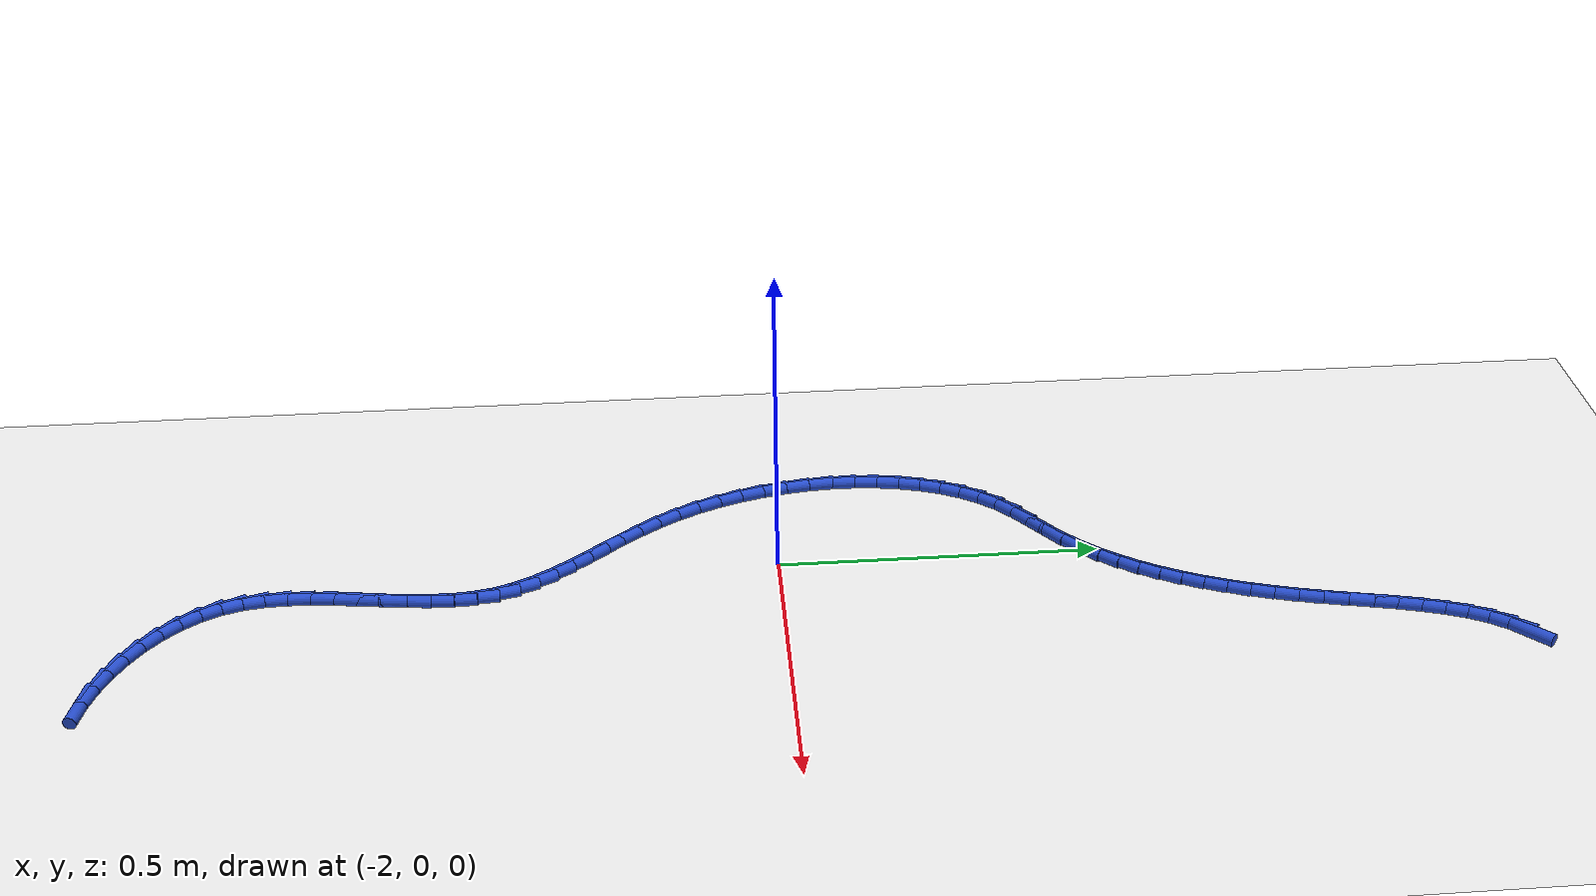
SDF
<sdf version="1.6">
 <world name="default">
  <model name="ground_plane">
   <static>1</static>
   <link name="link">
    <collision name="collision">
     <geometry><plane><normal>0 0 1</normal><size>100 100</size></plane></geometry>
     <surface><friction><ode><mu>100</mu><mu2>50</mu2></ode></friction></surface>
    </collision>
    <visual name="visual">
     <cast_shadows>0</cast_shadows>
     <geometry><plane><normal>0 0 1</normal><size>100 100</size></plane></geometry>
     <material>
      <script><uri>file://media/materials/scripts/gazebo.material</uri><name>Gazebo/WhiteGlow</name></script>
     </material>
    </visual>
   </link>
  </model>
  <model name="line">
   <link name="link_71">
    <pose>-1.721616992070894 1.0969498196716259 0.01 0 1.57 0.7850406480658003</pose>
    <collision name="collision">
     <geometry><cylinder><radius>0.01</radius><length>0.08</length></cylinder></geometry>
    </collision>
    <visual name="visual">
     <material>
      <script><name>Gazebo/Blue</name><uri>file://media/materials/scripts/gazebo.material</uri></script>
     </material>
     <geometry><cylinder><radius>0.01</radius><length>0.08</length></cylinder></geometry>
    </visual>
   </link>
   <link name="link_72">
    <pose>-1.7428768564190924 1.0757051513461702 0.01 0 1.57 0.9536490892849643</pose>
    <collision name="collision">
     <geometry><cylinder><radius>0.01</radius><length>0.08</length></cylinder></geometry>
    </collision>
    <visual name="visual">
     <material>
      <script><name>Gazebo/Blue</name><uri>file://media/materials/scripts/gazebo.material</uri></script>
     </material>
     <geometry><cylinder><radius>0.01</radius><length>0.08</length></cylinder></geometry>
    </visual>
   </link>
   <link name="link_73">
    <pose>-1.7606651377071614 1.0506375008353988 0.01 0 1.57 1.0885914494220699</pose>
    <collision name="collision">
     <geometry><cylinder><radius>0.01</radius><length>0.08</length></cylinder></geometry>
    </collision>
    <visual name="visual">
     <material>
      <script><name>Gazebo/Blue</name><uri>file://media/materials/scripts/gazebo.material</uri></script>
     </material>
     <geometry><cylinder><radius>0.01</radius><length>0.08</length></cylinder></geometry>
    </visual>
   </link>
   <link name="link_74">
    <pose>-1.7755036927709775 1.0222880817237585 0.01 0 1.57 1.1909164609186258</pose>
    <collision name="collision">
     <geometry><cylinder><radius>0.01</radius><length>0.08</length></cylinder></geometry>
    </collision>
    <visual name="visual">
     <material>
      <script><name>Gazebo/Blue</name><uri>file://media/materials/scripts/gazebo.material</uri></script>
     </material>
     <geometry><cylinder><radius>0.01</radius><length>0.08</length></cylinder></geometry>
    </visual>
   </link>
   <link name="link_75">
    <pose>-1.7879164550227946 0.9911997063105349 0.01 0 1.57 1.2649174011875994</pose>
    <collision name="collision">
     <geometry><cylinder><radius>0.01</radius><length>0.08</length></cylinder></geometry>
    </collision>
    <visual name="visual">
     <material>
      <script><name>Gazebo/Blue</name><uri>file://media/materials/scripts/gazebo.material</uri></script>
     </material>
     <geometry><cylinder><radius>0.01</radius><length>0.08</length></cylinder></geometry>
    </visual>
   </link>
   <link name="link_76">
    <pose>-1.7984273578748673 0.9579151868950121 0.01 0 1.57 1.315111400061034</pose>
    <collision name="collision">
     <geometry><cylinder><radius>0.01</radius><length>0.08</length></cylinder></geometry>
    </collision>
    <visual name="visual">
     <material>
      <script><name>Gazebo/Blue</name><uri>file://media/materials/scripts/gazebo.material</uri></script>
     </material>
     <geometry><cylinder><radius>0.01</radius><length>0.08</length></cylinder></geometry>
    </visual>
   </link>
   <link name="link_77">
    <pose>-1.8075603347394487 0.9229773357764767 0.01 0 1.57 1.3450478365298546</pose>
    <collision name="collision">
     <geometry><cylinder><radius>0.01</radius><length>0.08</length></cylinder></geometry>
    </collision>
    <visual name="visual">
     <material>
      <script><name>Gazebo/Blue</name><uri>file://media/materials/scripts/gazebo.material</uri></script>
     </material>
     <geometry><cylinder><radius>0.01</radius><length>0.08</length></cylinder></geometry>
    </visual>
   </link>
   <link name="link_78">
    <pose>-1.8158393190287943 0.8869289652542129 0.01 0 1.57 1.3570249119139484</pose>
    <collision name="collision">
     <geometry><cylinder><radius>0.01</radius><length>0.08</length></cylinder></geometry>
    </collision>
    <visual name="visual">
     <material>
      <script><name>Gazebo/Blue</name><uri>file://media/materials/scripts/gazebo.material</uri></script>
     </material>
     <geometry><cylinder><radius>0.01</radius><length>0.08</length></cylinder></geometry>
    </visual>
   </link>
   <link name="link_79">
    <pose>-1.8237882441551565 0.8503128876275055 0.01 0 1.57 1.3521179907283998</pose>
    <collision name="collision">
     <geometry><cylinder><radius>0.01</radius><length>0.08</length></cylinder></geometry>
    </collision>
    <visual name="visual">
     <material>
      <script><name>Gazebo/Blue</name><uri>file://media/materials/scripts/gazebo.material</uri></script>
     </material>
     <geometry><cylinder><radius>0.01</radius><length>0.08</length></cylinder></geometry>
    </visual>
   </link>
   <link name="link_80">
    <pose>-1.8319310435307916 0.813671915195641 0.01 0 1.57 1.3308188101149714</pose>
    <collision name="collision">
     <geometry><cylinder><radius>0.01</radius><length>0.08</length></cylinder></geometry>
    </collision>
    <visual name="visual">
     <material>
      <script><name>Gazebo/Blue</name><uri>file://media/materials/scripts/gazebo.material</uri></script>
     </material>
     <geometry><cylinder><radius>0.01</radius><length>0.08</length></cylinder></geometry>
    </visual>
   </link>
   <link name="link_81">
    <pose>-1.8407745361681223 0.7775307210288828 0.01 0 1.57 1.3002278407176653</pose>
    <collision name="collision">
     <geometry><cylinder><radius>0.01</radius><length>0.08</length></cylinder></geometry>
    </collision>
    <visual name="visual">
     <material>
      <script><name>Gazebo/Blue</name><uri>file://media/materials/scripts/gazebo.material</uri></script>
     </material>
     <geometry><cylinder><radius>0.01</radius><length>0.08</length></cylinder></geometry>
    </visual>
   </link>
   <link name="link_82">
    <pose>-1.850585456312026 0.7421595168885219 0.01 0 1.57 1.2657732977569667</pose>
    <collision name="collision">
     <geometry><cylinder><radius>0.01</radius><length>0.08</length></cylinder></geometry>
    </collision>
    <visual name="visual">
     <material>
      <script><name>Gazebo/Blue</name><uri>file://media/materials/scripts/gazebo.material</uri></script>
     </material>
     <geometry><cylinder><radius>0.01</radius><length>0.08</length></cylinder></geometry>
    </visual>
   </link>
   <link name="link_83">
    <pose>-1.8614535751484085 0.7076409547331804 0.01 0 1.57 1.2273662343875011</pose>
    <collision name="collision">
     <geometry><cylinder><radius>0.01</radius><length>0.08</length></cylinder></geometry>
    </collision>
    <visual name="visual">
     <material>
      <script><name>Gazebo/Blue</name><uri>file://media/materials/scripts/gazebo.material</uri></script>
     </material>
     <geometry><cylinder><radius>0.01</radius><length>0.08</length></cylinder></geometry>
    </visual>
   </link>
   <link name="link_84">
    <pose>-1.8734645432204677 0.6740533191301273 0.01 0 1.57 1.1847955524513125</pose>
    <collision name="collision">
     <geometry><cylinder><radius>0.01</radius><length>0.08</length></cylinder></geometry>
    </collision>
    <visual name="visual">
     <material>
      <script><name>Gazebo/Blue</name><uri>file://media/materials/scripts/gazebo.material</uri></script>
     </material>
     <geometry><cylinder><radius>0.01</radius><length>0.08</length></cylinder></geometry>
    </visual>
   </link>
   <link name="link_85">
    <pose>-1.8867040110714004 0.6414748946466312 0.01 0 1.57 1.1378822868149392</pose>
    <collision name="collision">
     <geometry><cylinder><radius>0.01</radius><length>0.08</length></cylinder></geometry>
    </collision>
    <visual name="visual">
     <material>
      <script><name>Gazebo/Blue</name><uri>file://media/materials/scripts/gazebo.material</uri></script>
     </material>
     <geometry><cylinder><radius>0.01</radius><length>0.08</length></cylinder></geometry>
    </visual>
   </link>
   <link name="link_86">
    <pose>-1.9012576292444046 0.6099839658499623 0.01 0 1.57 1.0865039645212868</pose>
    <collision name="collision">
     <geometry><cylinder><radius>0.01</radius><length>0.08</length></cylinder></geometry>
    </collision>
    <visual name="visual">
     <material>
      <script><name>Gazebo/Blue</name><uri>file://media/materials/scripts/gazebo.material</uri></script>
     </material>
     <geometry><cylinder><radius>0.01</radius><length>0.08</length></cylinder></geometry>
    </visual>
   </link>
   <link name="link_87">
    <pose>-1.9172110482826765 0.5796588173073889 0.01 0 1.57 1.0306241380098038</pose>
    <collision name="collision">
     <geometry><cylinder><radius>0.01</radius><length>0.08</length></cylinder></geometry>
    </collision>
    <visual name="visual">
     <material>
      <script><name>Gazebo/Blue</name><uri>file://media/materials/scripts/gazebo.material</uri></script>
     </material>
     <geometry><cylinder><radius>0.01</radius><length>0.08</length></cylinder></geometry>
    </visual>
   </link>
   <link name="link_88">
    <pose>-1.9346499187294144 0.55057773358618 0.01 0 1.57 0.9703253128235724</pose>
    <collision name="collision">
     <geometry><cylinder><radius>0.01</radius><length>0.08</length></cylinder></geometry>
    </collision>
    <visual name="visual">
     <material>
      <script><name>Gazebo/Blue</name><uri>file://media/materials/scripts/gazebo.material</uri></script>
     </material>
     <geometry><cylinder><radius>0.01</radius><length>0.08</length></cylinder></geometry>
    </visual>
   </link>
   <link name="link_89">
    <pose>-1.953659891127815 0.5228189992536054 0.01 0 1.57 0.9058415240413282</pose>
    <collision name="collision">
     <geometry><cylinder><radius>0.01</radius><length>0.08</length></cylinder></geometry>
    </collision>
    <visual name="visual">
     <material>
      <script><name>Gazebo/Blue</name><uri>file://media/materials/scripts/gazebo.material</uri></script>
     </material>
     <geometry><cylinder><radius>0.01</radius><length>0.08</length></cylinder></geometry>
    </visual>
   </link>
   <link name="link_90">
    <pose>-1.9743266160210764 0.496460898876934 0.01 0 1.57 0.8375846590928235</pose>
    <collision name="collision">
     <geometry><cylinder><radius>0.01</radius><length>0.08</length></cylinder></geometry>
    </collision>
    <visual name="visual">
     <material>
      <script><name>Gazebo/Blue</name><uri>file://media/materials/scripts/gazebo.material</uri></script>
     </material>
     <geometry><cylinder><radius>0.01</radius><length>0.08</length></cylinder></geometry>
    </visual>
   </link>
   <link name="link_91">
    <pose>-1.9967357439523943 0.47158171702343454 0.01 0 1.57 0.7661570792506457</pose>
    <collision name="collision">
     <geometry><cylinder><radius>0.01</radius><length>0.08</length></cylinder></geometry>
    </collision>
    <visual name="visual">
     <material>
      <script><name>Gazebo/Blue</name><uri>file://media/materials/scripts/gazebo.material</uri></script>
     </material>
     <geometry><cylinder><radius>0.01</radius><length>0.08</length></cylinder></geometry>
    </visual>
   </link>
   <link name="link_92">
    <pose>-2.0209729254649678 0.44825973826037635 0.01 0 1.57 0.6932432770063294</pose>
    <collision name="collision">
     <geometry><cylinder><radius>0.01</radius><length>0.08</length></cylinder></geometry>
    </collision>
    <visual name="visual">
     <material>
      <script><name>Gazebo/Blue</name><uri>file://media/materials/scripts/gazebo.material</uri></script>
     </material>
     <geometry><cylinder><radius>0.01</radius><length>0.08</length></cylinder></geometry>
    </visual>
   </link>
   <link name="link_93">
    <pose>-2.0471004897396075 0.42655287189123436 0.01 0 1.57 0.6484501410979092</pose>
    <collision name="collision">
     <geometry><cylinder><radius>0.01</radius><length>0.08</length></cylinder></geometry>
    </collision>
    <visual name="visual">
     <material>
      <script><name>Gazebo/Blue</name><uri>file://media/materials/scripts/gazebo.material</uri></script>
     </material>
     <geometry><cylinder><radius>0.01</radius><length>0.08</length></cylinder></geometry>
    </visual>
   </link>
   <link name="link_94">
    <pose>-2.074418054748034 0.40585266640285317 0.01 0 1.57 0.6653118434139</pose>
    <collision name="collision">
     <geometry><cylinder><radius>0.01</radius><length>0.08</length></cylinder></geometry>
    </collision>
    <visual name="visual">
     <material>
      <script><name>Gazebo/Blue</name><uri>file://media/materials/scripts/gazebo.material</uri></script>
     </material>
     <geometry><cylinder><radius>0.01</radius><length>0.08</length></cylinder></geometry>
    </visual>
   </link>
   <link name="link_95">
    <pose>-2.101310487315033 0.3847514761519522 0.01 0 1.57 0.7467131024786564</pose>
    <collision name="collision">
     <geometry><cylinder><radius>0.01</radius><length>0.08</length></cylinder></geometry>
    </collision>
    <visual name="visual">
     <material>
      <script><name>Gazebo/Blue</name><uri>file://media/materials/scripts/gazebo.material</uri></script>
     </material>
     <geometry><cylinder><radius>0.01</radius><length>0.08</length></cylinder></geometry>
    </visual>
   </link>
   <link name="link_96">
    <pose>-2.1261122077774526 0.3617980871313153 0.01 0 1.57 0.8728553051758108</pose>
    <collision name="collision">
     <geometry><cylinder><radius>0.01</radius><length>0.08</length></cylinder></geometry>
    </collision>
    <visual name="visual">
     <material>
      <script><name>Gazebo/Blue</name><uri>file://media/materials/scripts/gazebo.material</uri></script>
     </material>
     <geometry><cylinder><radius>0.01</radius><length>0.08</length></cylinder></geometry>
    </visual>
   </link>
   <link name="link_97">
    <pose>-2.1476861657017676 0.33607728670237325 0.01 0 1.57 0.9971516784816523</pose>
    <collision name="collision">
     <geometry><cylinder><radius>0.01</radius><length>0.08</length></cylinder></geometry>
    </collision>
    <visual name="visual">
     <material>
      <script><name>Gazebo/Blue</name><uri>file://media/materials/scripts/gazebo.material</uri></script>
     </material>
     <geometry><cylinder><radius>0.01</radius><length>0.08</length></cylinder></geometry>
    </visual>
   </link>
   <link name="link_98">
    <pose>-2.1659761535748423 0.307769985680378 0.01 0 1.57 1.1125925406871937</pose>
    <collision name="collision">
     <geometry><cylinder><radius>0.01</radius><length>0.08</length></cylinder></geometry>
    </collision>
    <visual name="visual">
     <material>
      <script><name>Gazebo/Blue</name><uri>file://media/materials/scripts/gazebo.material</uri></script>
     </material>
     <geometry><cylinder><radius>0.01</radius><length>0.08</length></cylinder></geometry>
    </visual>
   </link>
   <link name="link_99">
    <pose>-2.1810580847479084 0.2771910836179291 0.01 0 1.57 1.2188079778994143</pose>
    <collision name="collision">
     <geometry><cylinder><radius>0.01</radius><length>0.08</length></cylinder></geometry>
    </collision>
    <visual name="visual">
     <material>
      <script><name>Gazebo/Blue</name><uri>file://media/materials/scripts/gazebo.material</uri></script>
     </material>
     <geometry><cylinder><radius>0.01</radius><length>0.08</length></cylinder></geometry>
    </visual>
   </link>
   <link name="link_100">
    <pose>-2.1930078725721986 0.24465548006762491 0.01 0 1.57 1.3162245835256292</pose>
    <collision name="collision">
     <geometry><cylinder><radius>0.01</radius><length>0.08</length></cylinder></geometry>
    </collision>
    <visual name="visual">
     <material>
      <script><name>Gazebo/Blue</name><uri>file://media/materials/scripts/gazebo.material</uri></script>
     </material>
     <geometry><cylinder><radius>0.01</radius><length>0.08</length></cylinder></geometry>
    </visual>
   </link>
   <link name="link_101">
    <pose>-2.2019014303989453 0.2104780745820642 0.01 0 1.57 1.405761200531321</pose>
    <collision name="collision">
     <geometry><cylinder><radius>0.01</radius><length>0.08</length></cylinder></geometry>
    </collision>
    <visual name="visual">
     <material>
      <script><name>Gazebo/Blue</name><uri>file://media/materials/scripts/gazebo.material</uri></script>
     </material>
     <geometry><cylinder><radius>0.01</radius><length>0.08</length></cylinder></geometry>
    </visual>
   </link>
   <link name="link_102">
    <pose>-2.207814671579381 0.1749737667138465 0.01 0 1.57 1.488584949189791</pose>
    <collision name="collision">
     <geometry><cylinder><radius>0.01</radius><length>0.08</length></cylinder></geometry>
    </collision>
    <visual name="visual">
     <material>
      <script><name>Gazebo/Blue</name><uri>file://media/materials/scripts/gazebo.material</uri></script>
     </material>
     <geometry><cylinder><radius>0.01</radius><length>0.08</length></cylinder></geometry>
    </visual>
   </link>
   <link name="link_103">
    <pose>-2.2108235094647366 0.13845745601557036 0.01 0 1.57 1.5659500493285001</pose>
    <collision name="collision">
     <geometry><cylinder><radius>0.01</radius><length>0.08</length></cylinder></geometry>
    </collision>
    <visual name="visual">
     <material>
      <script><name>Gazebo/Blue</name><uri>file://media/materials/scripts/gazebo.material</uri></script>
     </material>
     <geometry><cylinder><radius>0.01</radius><length>0.08</length></cylinder></geometry>
    </visual>
   </link>
   <link name="link_104">
    <pose>-2.2110038574062454 0.10124404203983471 0.01 0 1.57 -1.5024844741557861</pose>
    <collision name="collision">
     <geometry><cylinder><radius>0.01</radius><length>0.08</length></cylinder></geometry>
    </collision>
    <visual name="visual">
     <material>
      <script><name>Gazebo/Blue</name><uri>file://media/materials/scripts/gazebo.material</uri></script>
     </material>
     <geometry><cylinder><radius>0.01</radius><length>0.08</length></cylinder></geometry>
    </visual>
   </link>
   <link name="link_105">
    <pose>-2.2084316287551404 0.06364842433923841 0.01 0 1.57 -1.432323264418848</pose>
    <collision name="collision">
     <geometry><cylinder><radius>0.01</radius><length>0.08</length></cylinder></geometry>
    </collision>
    <visual name="visual">
     <material>
      <script><name>Gazebo/Blue</name><uri>file://media/materials/scripts/gazebo.material</uri></script>
     </material>
     <geometry><cylinder><radius>0.01</radius><length>0.08</length></cylinder></geometry>
    </visual>
   </link>
   <link name="link_106">
    <pose>-2.203182736862652 0.025985502466379436 0.01 0 1.57 -1.3639980919479031</pose>
    <collision name="collision">
     <geometry><cylinder><radius>0.01</radius><length>0.08</length></cylinder></geometry>
    </collision>
    <visual name="visual">
     <material>
      <script><name>Gazebo/Blue</name><uri>file://media/materials/scripts/gazebo.material</uri></script>
     </material>
     <geometry><cylinder><radius>0.01</radius><length>0.08</length></cylinder></geometry>
    </visual>
   </link>
   <link name="link_107">
    <pose>-2.195333095080014 -0.011429824026141476 0.01 0 1.57 -1.2963870027270286</pose>
    <collision name="collision">
     <geometry><cylinder><radius>0.01</radius><length>0.08</length></cylinder></geometry>
    </collision>
    <visual name="visual">
     <material>
      <script><name>Gazebo/Blue</name><uri>file://media/materials/scripts/gazebo.material</uri></script>
     </material>
     <geometry><cylinder><radius>0.01</radius><length>0.08</length></cylinder></geometry>
    </visual>
   </link>
   <link name="link_108">
    <pose>-2.1849586167584576 -0.04828265558572631 0.01 0 1.57 -1.2283880622143148</pose>
    <collision name="collision">
     <geometry><cylinder><radius>0.01</radius><length>0.08</length></cylinder></geometry>
    </collision>
    <visual name="visual">
     <material>
      <script><name>Gazebo/Blue</name><uri>file://media/materials/scripts/gazebo.material</uri></script>
     </material>
     <geometry><cylinder><radius>0.01</radius><length>0.08</length></cylinder></geometry>
    </visual>
   </link>
   <link name="link_109">
    <pose>-2.1721352152492166 -0.08425809265977621 0.01 0 1.57 -1.1588979036686702</pose>
    <collision name="collision">
     <geometry><cylinder><radius>0.01</radius><length>0.08</length></cylinder></geometry>
    </collision>
    <visual name="visual">
     <material>
      <script><name>Gazebo/Blue</name><uri>file://media/materials/scripts/gazebo.material</uri></script>
     </material>
     <geometry><cylinder><radius>0.01</radius><length>0.08</length></cylinder></geometry>
    </visual>
   </link>
   <link name="link_110">
    <pose>-2.156938803903522 -0.11904123569569228 0.01 0 1.57 -1.0867926990642423</pose>
    <collision name="collision">
     <geometry><cylinder><radius>0.01</radius><length>0.08</length></cylinder></geometry>
    </collision>
    <visual name="visual">
     <material>
      <script><name>Gazebo/Blue</name><uri>file://media/materials/scripts/gazebo.material</uri></script>
     </material>
     <geometry><cylinder><radius>0.01</radius><length>0.08</length></cylinder></geometry>
    </visual>
   </link>
   <link name="link_111">
    <pose>-2.1394452960726067 -0.15231718514087558 0.01 0 1.57 -1.0125864615759976</pose>
    <collision name="collision">
     <geometry><cylinder><radius>0.01</radius><length>0.08</length></cylinder></geometry>
    </collision>
    <visual name="visual">
     <material>
      <script><name>Gazebo/Blue</name><uri>file://media/materials/scripts/gazebo.material</uri></script>
     </material>
     <geometry><cylinder><radius>0.01</radius><length>0.08</length></cylinder></geometry>
    </visual>
   </link>
   <link name="link_112">
    <pose>-2.1197734501352796 -0.1838194295296383 0.01 0 1.57 -0.9499192012515043</pose>
    <collision name="collision">
     <geometry><cylinder><radius>0.01</radius><length>0.08</length></cylinder></geometry>
    </collision>
    <visual name="visual">
     <material>
      <script><name>Gazebo/Blue</name><uri>file://media/materials/scripts/gazebo.material</uri></script>
     </material>
     <geometry><cylinder><radius>0.01</radius><length>0.08</length></cylinder></geometry>
    </visual>
   </link>
   <link name="link_113">
    <pose>-2.098406662987274 -0.2136932708842172 0.01 0 1.57 -0.9064836018066085</pose>
    <collision name="collision">
     <geometry><cylinder><radius>0.01</radius><length>0.08</length></cylinder></geometry>
    </collision>
    <visual name="visual">
     <material>
      <script><name>Gazebo/Blue</name><uri>file://media/materials/scripts/gazebo.material</uri></script>
     </material>
     <geometry><cylinder><radius>0.01</radius><length>0.08</length></cylinder></geometry>
    </visual>
   </link>
   <link name="link_114">
    <pose>-2.0760126320579384 -0.24229215557270448 0.01 0 1.57 -0.8827832902621904</pose>
    <collision name="collision">
     <geometry><cylinder><radius>0.01</radius><length>0.08</length></cylinder></geometry>
    </collision>
    <visual name="visual">
     <material>
      <script><name>Gazebo/Blue</name><uri>file://media/materials/scripts/gazebo.material</uri></script>
     </material>
     <geometry><cylinder><radius>0.01</radius><length>0.08</length></cylinder></geometry>
    </visual>
   </link>
   <link name="link_115">
    <pose>-2.0532604779283687 -0.2699711372346604 0.01 0 1.57 -0.8794183600517185</pose>
    <collision name="collision">
     <geometry><cylinder><radius>0.01</radius><length>0.08</length></cylinder></geometry>
    </collision>
    <visual name="visual">
     <material>
      <script><name>Gazebo/Blue</name><uri>file://media/materials/scripts/gazebo.material</uri></script>
     </material>
     <geometry><cylinder><radius>0.01</radius><length>0.08</length></cylinder></geometry>
    </visual>
   </link>
   <link name="link_116">
    <pose>-2.030819321179663 -0.29708526950964514 0.01 0 1.57 -0.8974719016273619</pose>
    <collision name="collision">
     <geometry><cylinder><radius>0.01</radius><length>0.08</length></cylinder></geometry>
    </collision>
    <visual name="visual">
     <material>
      <script><name>Gazebo/Blue</name><uri>file://media/materials/scripts/gazebo.material</uri></script>
     </material>
     <geometry><cylinder><radius>0.01</radius><length>0.08</length></cylinder></geometry>
    </visual>
   </link>
   <link name="link_117">
    <pose>-2.0093582823929172 -0.3239896060372188 0.01 0 1.57 -0.9386384016026388</pose>
    <collision name="collision">
     <geometry><cylinder><radius>0.01</radius><length>0.08</length></cylinder></geometry>
    </collision>
    <visual name="visual">
     <material>
      <script><name>Gazebo/Blue</name><uri>file://media/materials/scripts/gazebo.material</uri></script>
     </material>
     <geometry><cylinder><radius>0.01</radius><length>0.08</length></cylinder></geometry>
    </visual>
   </link>
   <link name="link_118">
    <pose>-1.989546482149229 -0.35103920045694187 0.01 0 1.57 -1.0050576760934646</pose>
    <collision name="collision">
     <geometry><cylinder><radius>0.01</radius><length>0.08</length></cylinder></geometry>
    </collision>
    <visual name="visual">
     <material>
      <script><name>Gazebo/Blue</name><uri>file://media/materials/scripts/gazebo.material</uri></script>
     </material>
     <geometry><cylinder><radius>0.01</radius><length>0.08</length></cylinder></geometry>
    </visual>
   </link>
   <link name="link_119">
    <pose>-1.9720530410296944 -0.37858910640837506 0.01 0 1.57 -1.0986424528634817</pose>
    <collision name="collision">
     <geometry><cylinder><radius>0.01</radius><length>0.08</length></cylinder></geometry>
    </collision>
    <visual name="visual">
     <material>
      <script><name>Gazebo/Blue</name><uri>file://media/materials/scripts/gazebo.material</uri></script>
     </material>
     <geometry><cylinder><radius>0.01</radius><length>0.08</length></cylinder></geometry>
    </visual>
   </link>
   <link name="link_120">
    <pose>-1.9575470796154109 -0.40699437753107737 0.01 0 1.57 -1.219641026207808</pose>
    <collision name="collision">
     <geometry><cylinder><radius>0.01</radius><length>0.08</length></cylinder></geometry>
    </collision>
    <visual name="visual">
     <material>
      <script><name>Gazebo/Blue</name><uri>file://media/materials/scripts/gazebo.material</uri></script>
     </material>
     <geometry><cylinder><radius>0.01</radius><length>0.08</length></cylinder></geometry>
    </visual>
   </link>
   <link name="link_121">
    <pose>-1.9466977184874743 -0.43661006746460945 0.01 0 1.57 -1.3627244724012533</pose>
    <collision name="collision">
     <geometry><cylinder><radius>0.01</radius><length>0.08</length></cylinder></geometry>
    </collision>
    <visual name="visual">
     <material>
      <script><name>Gazebo/Blue</name><uri>file://media/materials/scripts/gazebo.material</uri></script>
     </material>
     <geometry><cylinder><radius>0.01</radius><length>0.08</length></cylinder></geometry>
    </visual>
   </link>
   <link name="link_122">
    <pose>-1.9401194534239337 -0.46776784724976667 0.01 0 1.57 -1.4938084427543095</pose>
    <collision name="collision">
     <geometry><cylinder><radius>0.01</radius><length>0.08</length></cylinder></geometry>
    </collision>
    <visual name="visual">
     <material>
      <script><name>Gazebo/Blue</name><uri>file://media/materials/scripts/gazebo.material</uri></script>
     </material>
     <geometry><cylinder><radius>0.01</radius><length>0.08</length></cylinder></geometry>
    </visual>
   </link>
   <link name="link_123">
    <pose>-1.9375987314091359 -0.5004449347921271 0.01 0 1.57 1.5507297130374487</pose>
    <collision name="collision">
     <geometry><cylinder><radius>0.01</radius><length>0.08</length></cylinder></geometry>
    </collision>
    <visual name="visual">
     <material>
      <script><name>Gazebo/Blue</name><uri>file://media/materials/scripts/gazebo.material</uri></script>
     </material>
     <geometry><cylinder><radius>0.01</radius><length>0.08</length></cylinder></geometry>
    </visual>
   </link>
   <link name="link_124">
    <pose>-1.938279048681533 -0.534343327612426 0.01 0 1.57 1.4846097579594504</pose>
    <collision name="collision">
     <geometry><cylinder><radius>0.01</radius><length>0.08</length></cylinder></geometry>
    </collision>
    <visual name="visual">
     <material>
      <script><name>Gazebo/Blue</name><uri>file://media/materials/scripts/gazebo.material</uri></script>
     </material>
     <geometry><cylinder><radius>0.01</radius><length>0.08</length></cylinder></geometry>
    </visual>
   </link>
   <link name="link_125">
    <pose>-1.941287040709838 -0.5691578058394502 0.01 0 1.57 1.4454927135231184</pose>
    <collision name="collision">
     <geometry><cylinder><radius>0.01</radius><length>0.08</length></cylinder></geometry>
    </collision>
    <visual name="visual">
     <material>
      <script><name>Gazebo/Blue</name><uri>file://media/materials/scripts/gazebo.material</uri></script>
     </material>
     <geometry><cylinder><radius>0.01</radius><length>0.08</length></cylinder></geometry>
    </visual>
   </link>
   <link name="link_126">
    <pose>-1.945749342962761 -0.6045831496019837 0.01 0 1.57 1.4305776430521557</pose>
    <collision name="collision">
     <geometry><cylinder><radius>0.01</radius><length>0.08</length></cylinder></geometry>
    </collision>
    <visual name="visual">
     <material>
      <script><name>Gazebo/Blue</name><uri>file://media/materials/scripts/gazebo.material</uri></script>
     </material>
     <geometry><cylinder><radius>0.01</radius><length>0.08</length></cylinder></geometry>
    </visual>
   </link>
   <link name="link_127">
    <pose>-1.9507925909090158 -0.6403141390288138 0.01 0 1.57 1.4386121707900599</pose>
    <collision name="collision">
     <geometry><cylinder><radius>0.01</radius><length>0.08</length></cylinder></geometry>
    </collision>
    <visual name="visual">
     <material>
      <script><name>Gazebo/Blue</name><uri>file://media/materials/scripts/gazebo.material</uri></script>
     </material>
     <geometry><cylinder><radius>0.01</radius><length>0.08</length></cylinder></geometry>
    </visual>
   </link>
   <link name="link_128">
    <pose>-1.9555434200173134 -0.6760455542487265 0.01 0 1.57 1.4699432826268095</pose>
    <collision name="collision">
     <geometry><cylinder><radius>0.01</radius><length>0.08</length></cylinder></geometry>
    </collision>
    <visual name="visual">
     <material>
      <script><name>Gazebo/Blue</name><uri>file://media/materials/scripts/gazebo.material</uri></script>
     </material>
     <geometry><cylinder><radius>0.01</radius><length>0.08</length></cylinder></geometry>
    </visual>
   </link>
   <link name="link_129">
    <pose>-1.9591284657563652 -0.7114721753905074 0.01 0 1.57 1.5264243081091793</pose>
    <collision name="collision">
     <geometry><cylinder><radius>0.01</radius><length>0.08</length></cylinder></geometry>
    </collision>
    <visual name="visual">
     <material>
      <script><name>Gazebo/Blue</name><uri>file://media/materials/scripts/gazebo.material</uri></script>
     </material>
     <geometry><cylinder><radius>0.01</radius><length>0.08</length></cylinder></geometry>
    </visual>
   </link>
   <link name="link_130">
    <pose>-1.9606743635948818 -0.7462887825829421 0.01 0 1.57 -1.530506659394587</pose>
    <collision name="collision">
     <geometry><cylinder><radius>0.01</radius><length>0.08</length></cylinder></geometry>
    </collision>
    <visual name="visual">
     <material>
      <script><name>Gazebo/Blue</name><uri>file://media/materials/scripts/gazebo.material</uri></script>
     </material>
     <geometry><cylinder><radius>0.01</radius><length>0.08</length></cylinder></geometry>
    </visual>
   </link>
   <link name="link_131">
    <pose>-1.9593077490015764 -0.7801901559548174 0.01 0 1.57 -1.414422954872825</pose>
    <collision name="collision">
     <geometry><cylinder><radius>0.01</radius><length>0.08</length></cylinder></geometry>
    </collision>
    <visual name="visual">
     <material>
      <script><name>Gazebo/Blue</name><uri>file://media/materials/scripts/gazebo.material</uri></script>
     </material>
     <geometry><cylinder><radius>0.01</radius><length>0.08</length></cylinder></geometry>
    </visual>
   </link>
   <link name="link_132">
    <pose>-1.9541552574451606 -0.81287107563492 0.01 0 1.57 -1.2657077555836371</pose>
    <collision name="collision">
     <geometry><cylinder><radius>0.01</radius><length>0.08</length></cylinder></geometry>
    </collision>
    <visual name="visual">
     <material>
      <script><name>Gazebo/Blue</name><uri>file://media/materials/scripts/gazebo.material</uri></script>
     </material>
     <geometry><cylinder><radius>0.01</radius><length>0.08</length></cylinder></geometry>
    </visual>
   </link>
   <link name="link_133">
    <pose>-1.9443438228730248 -0.8440263421515106 0.01 0 1.57 -1.0980668398370181</pose>
    <collision name="collision">
     <geometry><cylinder><radius>0.01</radius><length>0.08</length></cylinder></geometry>
    </collision>
    <visual name="visual">
     <material>
      <script><name>Gazebo/Blue</name><uri>file://media/materials/scripts/gazebo.material</uri></script>
     </material>
     <geometry><cylinder><radius>0.01</radius><length>0.08</length></cylinder></geometry>
    </visual>
   </link>
   <link name="link_134">
    <pose>-1.9293354749649778 -0.8733736580963114 0.01 0 1.57 -0.9445455168122121</pose>
    <collision name="collision">
     <geometry><cylinder><radius>0.01</radius><length>0.08</length></cylinder></geometry>
    </collision>
    <visual name="visual">
     <material>
      <script><name>Gazebo/Blue</name><uri>file://media/materials/scripts/gazebo.material</uri></script>
     </material>
     <geometry><cylinder><radius>0.01</radius><length>0.08</length></cylinder></geometry>
    </visual>
   </link>
   <link name="link_135">
    <pose>-1.9095697114160328 -0.9006975309539353 0.01 0 1.57 -0.8096903103598907</pose>
    <collision name="collision">
     <geometry><cylinder><radius>0.01</radius><length>0.08</length></cylinder></geometry>
    </collision>
    <visual name="visual">
     <material>
      <script><name>Gazebo/Blue</name><uri>file://media/materials/scripts/gazebo.material</uri></script>
     </material>
     <geometry><cylinder><radius>0.01</radius><length>0.08</length></cylinder></geometry>
    </visual>
   </link>
   <link name="link_136">
    <pose>-1.885663292877567 -0.9257945832169845 0.01 0 1.57 -0.6905987799727843</pose>
    <collision name="collision">
     <geometry><cylinder><radius>0.01</radius><length>0.08</length></cylinder></geometry>
    </collision>
    <visual name="visual">
     <material>
      <script><name>Gazebo/Blue</name><uri>file://media/materials/scripts/gazebo.material</uri></script>
     </material>
     <geometry><cylinder><radius>0.01</radius><length>0.08</length></cylinder></geometry>
    </visual>
   </link>
   <link name="link_137">
    <pose>-1.858232980000959 -0.9484614373780612 0.01 0 1.57 -0.5836155222064221</pose>
    <collision name="collision">
     <geometry><cylinder><radius>0.01</radius><length>0.08</length></cylinder></geometry>
    </collision>
    <visual name="visual">
     <material>
      <script><name>Gazebo/Blue</name><uri>file://media/materials/scripts/gazebo.material</uri></script>
     </material>
     <geometry><cylinder><radius>0.01</radius><length>0.08</length></cylinder></geometry>
    </visual>
   </link>
   <link name="link_138">
    <pose>-1.8278955334375864 -0.9684947159297684 0.01 0 1.57 -0.48504869793741606</pose>
    <collision name="collision">
     <geometry><cylinder><radius>0.01</radius><length>0.08</length></cylinder></geometry>
    </collision>
    <visual name="visual">
     <material>
      <script><name>Gazebo/Blue</name><uri>file://media/materials/scripts/gazebo.material</uri></script>
     </material>
     <geometry><cylinder><radius>0.01</radius><length>0.08</length></cylinder></geometry>
    </visual>
   </link>
   <link name="link_139">
    <pose>-1.795267713838828 -0.9856910413647072 0.01 0 1.57 -0.39140134864751497</pose>
    <collision name="collision">
     <geometry><cylinder><radius>0.01</radius><length>0.08</length></cylinder></geometry>
    </collision>
    <visual name="visual">
     <material>
      <script><name>Gazebo/Blue</name><uri>file://media/materials/scripts/gazebo.material</uri></script>
     </material>
     <geometry><cylinder><radius>0.01</radius><length>0.08</length></cylinder></geometry>
    </visual>
   </link>
   <link name="link_140">
    <pose>-1.760966281856061 -0.9998470361754801 0.01 0 1.57 -0.2993465097160661</pose>
    <collision name="collision">
     <geometry><cylinder><radius>0.01</radius><length>0.08</length></cylinder></geometry>
    </collision>
    <visual name="visual">
     <material>
      <script><name>Gazebo/Blue</name><uri>file://media/materials/scripts/gazebo.material</uri></script>
     </material>
     <geometry><cylinder><radius>0.01</radius><length>0.08</length></cylinder></geometry>
    </visual>
   </link>
   <link name="link_141">
    <pose>-1.725607998140664 -1.0107593228546896 0.01 0 1.57 -0.20558830998005556</pose>
    <collision name="collision">
     <geometry><cylinder><radius>0.01</radius><length>0.08</length></cylinder></geometry>
    </collision>
    <visual name="visual">
     <material>
      <script><name>Gazebo/Blue</name><uri>file://media/materials/scripts/gazebo.material</uri></script>
     </material>
     <geometry><cylinder><radius>0.01</radius><length>0.08</length></cylinder></geometry>
    </visual>
   </link>
  </model>
 </world>
</sdf>
